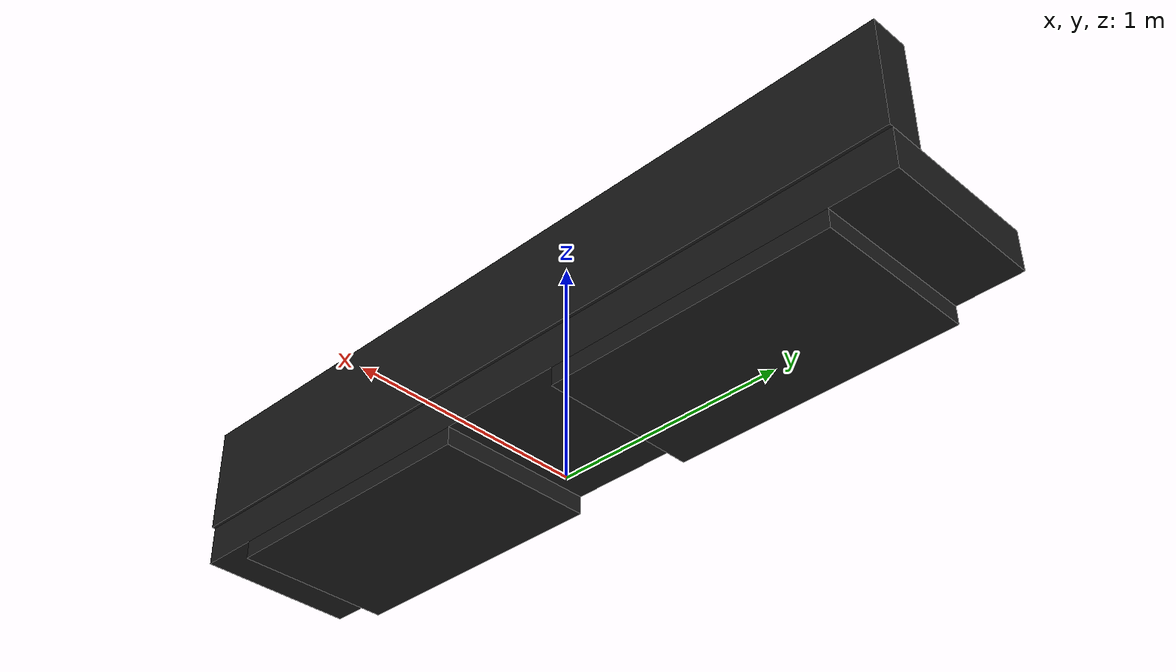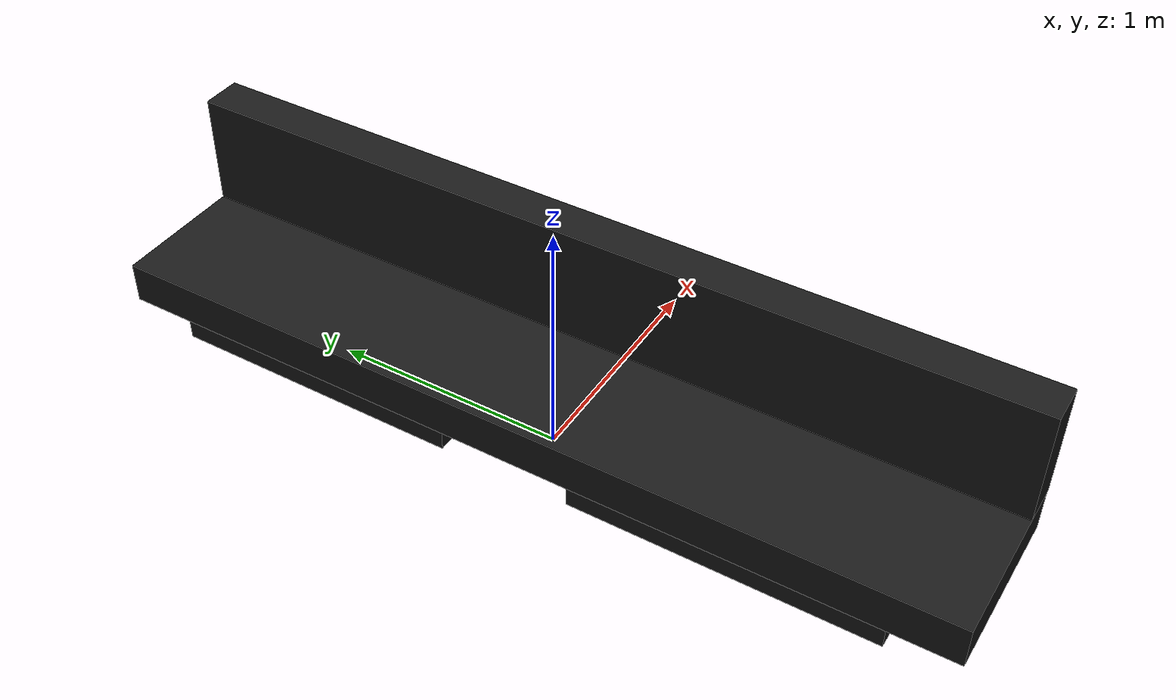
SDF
<?xml version="1.0"?>
<sdf version="1.6">
  <model name="rwc2015/sofa">
    <link name="1_link">
      <collision name="1_col">
        <geometry>
          <box>
            <size>0.72 1.25 0.08</size>
          </box>
        </geometry>
      </collision>
      <visual name="1_vis">
        <geometry>
          <box>
            <size>0.72 1.25 0.08</size>
          </box>
        </geometry>
        <material>
          <ambient>0.1 0.1 0.1 1</ambient>
        </material>
      </visual>
      <pose>0.0 0.9 0.15 0 0 0</pose>
    </link>
    <link name="2_link">
      <collision name="2_col">
        <geometry>
          <box>
            <size>0.72 1.25 0.08</size>
          </box>
        </geometry>
      </collision>
      <visual name="2_vis">
        <geometry>
          <box>
            <size>0.72 1.25 0.08</size>
          </box>
        </geometry>
        <material>
          <ambient>0.1 0.1 0.1 1</ambient>
        </material>
      </visual>
      <pose>0.0 -0.9 0.15 0 0 0</pose>
    </link>
    <link name="3_link">
      <collision name="3_col">
        <geometry>
          <box>
            <size>0.72 3.6 0.175</size>
          </box>
        </geometry>
      </collision>
      <visual name="3_vis">
        <geometry>
          <box>
            <size>0.72 3.6 0.175</size>
          </box>
        </geometry>
        <material>
          <ambient>0.1 0.1 0.1 1</ambient>
        </material>
      </visual>
      <pose>0.0 0.0 0.2775 0 0 0</pose>
    </link>
    <link name="4_link">
      <collision name="4_col">
        <geometry>
          <box>
            <size>0.17 3.6 0.48</size>
          </box>
        </geometry>
      </collision>
      <visual name="4_vis">
        <geometry>
          <box>
            <size>0.17 3.6 0.48</size>
          </box>
        </geometry>
        <material>
          <ambient>0.1 0.1 0.1 1</ambient>
        </material>
      </visual>
      <pose>0.29 0.0 0.605 0 0 0</pose>
    </link>
    <link name="in_front_of">
      <virtual_volume name="in_front_of_vv">
        <geometry>
          <box>
            <size>1.2 0.64 1</size>
          </box>
        </geometry>
        <pose>-0.6 -1.22 0.5 0 0 0</pose>
      </virtual_volume>
    </link>
    <link name="in_front_of_pos2">
      <virtual_volume name="in_front_of_pos2_vv">
        <geometry>
          <box>
            <size>1.2 0.64 1</size>
          </box>
        </geometry>
        <pose>-0.6 1.22 0.5 0 0 0</pose>
      </virtual_volume>
    </link>
    <static>true</static>
  </model>
</sdf>
